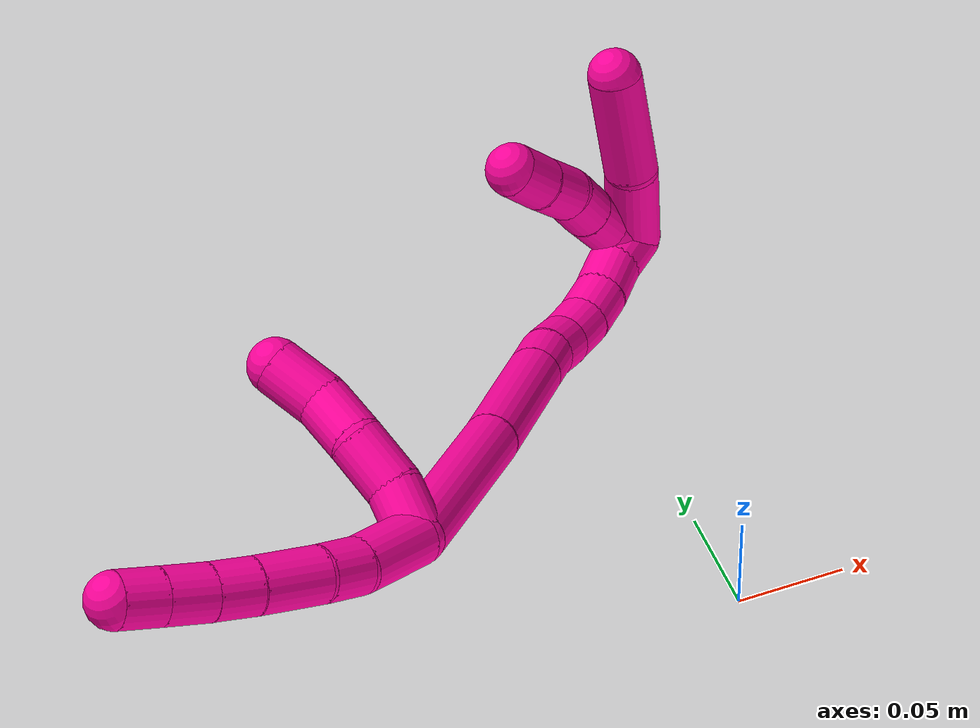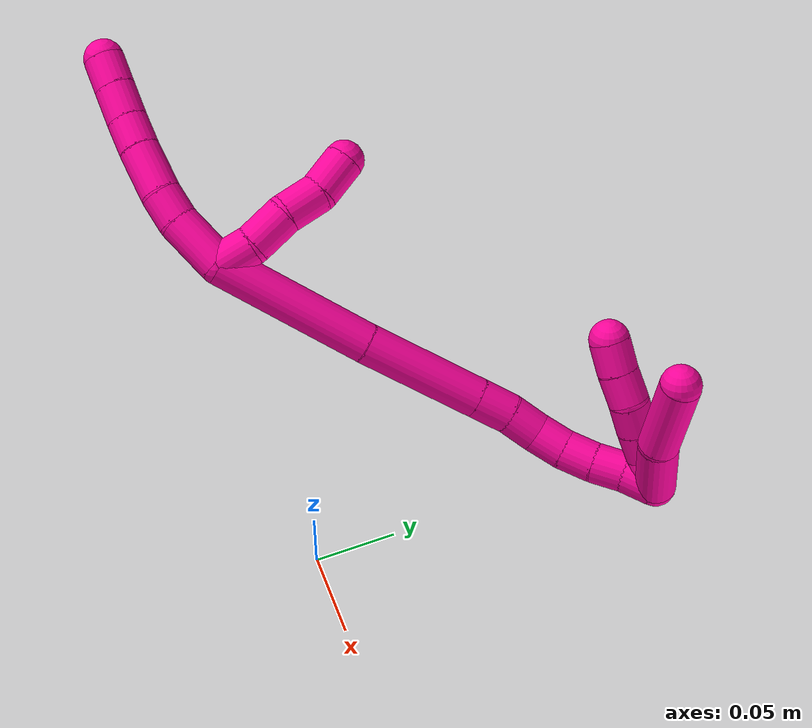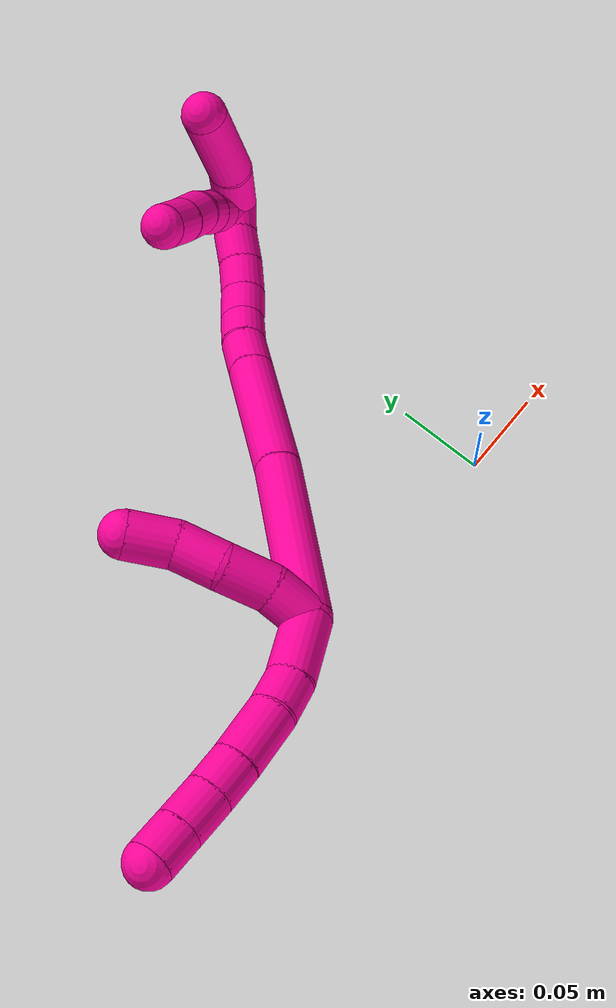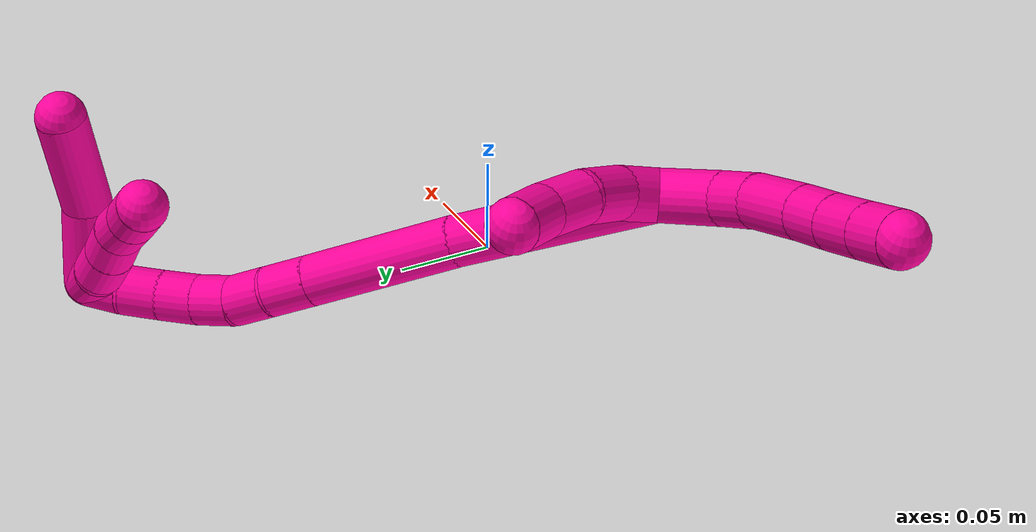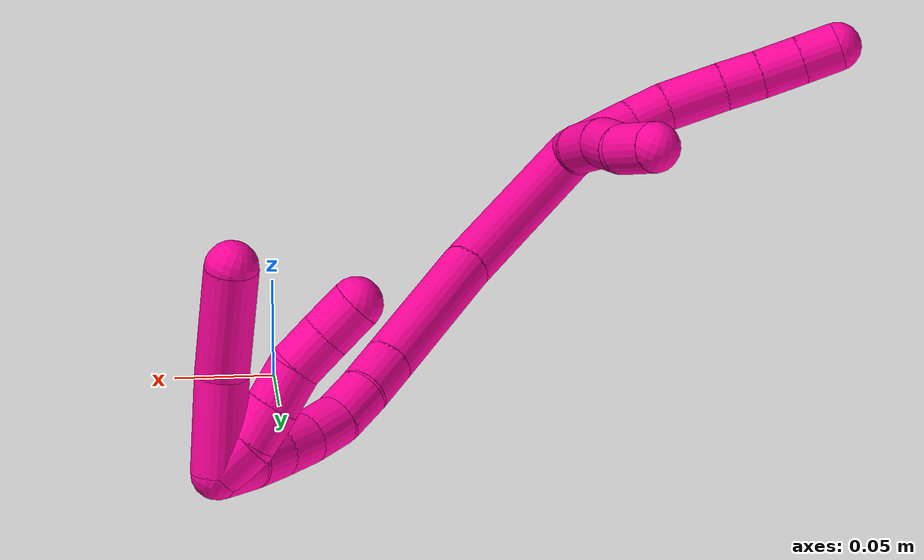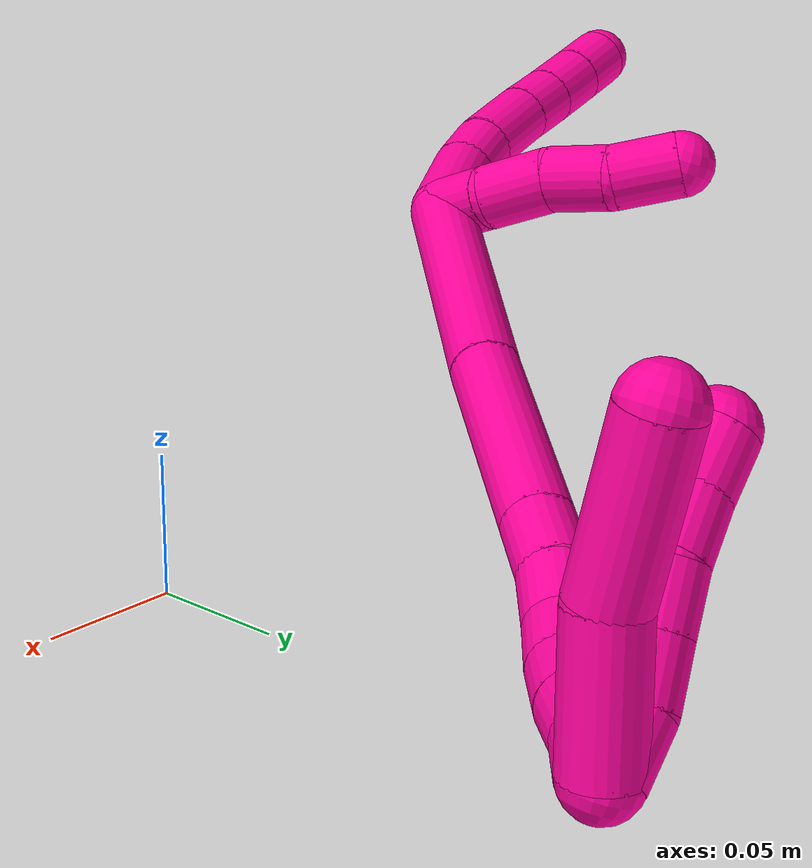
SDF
<sdf version="1.7">
 <world name="default">
  <model name="18">
   <static>0</static>
   <link name="18">
    <collision name="collision-cylinder-e_1_2_8">
     <pose>-0.013964 -0.005539 0.009922 0.509186 -0.887696 -0.246231</pose>
     <geometry><cylinder><radius>0.0125</radius><length>0.036007</length></cylinder></geometry>
     <surface>
      <friction><ode><mu>1.16</mu><mu2>1.16</mu2><slip1>0</slip1><slip2>0</slip2></ode></friction>
      <contact><ode><kp>1e+06</kp><kd>1</kd><max_vel>0</max_vel><min_depth>0.001</min_depth></ode></contact>
     </surface>
    </collision>
    <visual name="visual-cylinder-e_1_2_8">
     <pose>-0.013964 -0.005539 0.009922 0.509186 -0.887696 -0.246231</pose>
     <geometry><cylinder><radius>0.0125</radius><length>0.036007</length></cylinder></geometry>
     <material><ambient>1 0.007843 0.615686 1</ambient></material>
    </visual>
    <collision name="collision-cylinder-e_2_8_9">
     <pose>-0.035548 -0.012357 0.026219 0.197923 -0.864454 -0.091541</pose>
     <geometry><cylinder><radius>0.0125</radius><length>0.020035</length></cylinder></geometry>
     <surface>
      <friction><ode><mu>1.16</mu><mu2>1.16</mu2><slip1>0</slip1><slip2>0</slip2></ode></friction>
      <contact><ode><kp>1e+06</kp><kd>1</kd><max_vel>0</max_vel><min_depth>0.001</min_depth></ode></contact>
     </surface>
    </collision>
    <visual name="visual-cylinder-e_2_8_9">
     <pose>-0.035548 -0.012357 0.026219 0.197923 -0.864454 -0.091541</pose>
     <geometry><cylinder><radius>0.0125</radius><length>0.020035</length></cylinder></geometry>
     <material><ambient>1 0.007843 0.615686 1</ambient></material>
    </visual>
    <collision name="collision-cylinder-e_3_9_10">
     <pose>-0.055714 -0.013558 0.041876 -0.008386 -0.933818 0.004227</pose>
     <geometry><cylinder><radius>0.0125</radius><length>0.031212</length></cylinder></geometry>
     <surface>
      <friction><ode><mu>1.16</mu><mu2>1.16</mu2><slip1>0</slip1><slip2>0</slip2></ode></friction>
      <contact><ode><kp>1e+06</kp><kd>1</kd><max_vel>0</max_vel><min_depth>0.001</min_depth></ode></contact>
     </surface>
    </collision>
    <visual name="visual-cylinder-e_3_9_10">
     <pose>-0.055714 -0.013558 0.041876 -0.008386 -0.933818 0.004227</pose>
     <geometry><cylinder><radius>0.0125</radius><length>0.031212</length></cylinder></geometry>
     <material><ambient>1 0.007843 0.615686 1</ambient></material>
    </visual>
    <collision name="collision-cylinder-e_4_10_11">
     <pose>-0.076434 -0.012871 0.057188 -0.100728 -0.932747 0.05074</pose>
     <geometry><cylinder><radius>0.0125</radius><length>0.020352</length></cylinder></geometry>
     <surface>
      <friction><ode><mu>1.16</mu><mu2>1.16</mu2><slip1>0</slip1><slip2>0</slip2></ode></friction>
      <contact><ode><kp>1e+06</kp><kd>1</kd><max_vel>0</max_vel><min_depth>0.001</min_depth></ode></contact>
     </surface>
    </collision>
    <visual name="visual-cylinder-e_4_10_11">
     <pose>-0.076434 -0.012871 0.057188 -0.100728 -0.932747 0.05074</pose>
     <geometry><cylinder><radius>0.0125</radius><length>0.020352</length></cylinder></geometry>
     <material><ambient>1 0.007843 0.615686 1</ambient></material>
    </visual>
    <collision name="collision-cylinder-e_5_11_12">
     <pose>-0.093205 -0.011417 0.070141 -0.121316 -0.889199 0.057851</pose>
     <geometry><cylinder><radius>0.0125</radius><length>0.02214</length></cylinder></geometry>
     <surface>
      <friction><ode><mu>1.16</mu><mu2>1.16</mu2><slip1>0</slip1><slip2>0</slip2></ode></friction>
      <contact><ode><kp>1e+06</kp><kd>1</kd><max_vel>0</max_vel><min_depth>0.001</min_depth></ode></contact>
     </surface>
    </collision>
    <visual name="visual-cylinder-e_5_11_12">
     <pose>-0.093205 -0.011417 0.070141 -0.121316 -0.889199 0.057851</pose>
     <geometry><cylinder><radius>0.0125</radius><length>0.02214</length></cylinder></geometry>
     <material><ambient>1 0.007843 0.615686 1</ambient></material>
    </visual>
    <collision name="collision-cylinder-e_6_12_6">
     <pose>-0.109606 -0.009791 0.083471 -0.121475 -0.879864 0.057233</pose>
     <geometry><cylinder><radius>0.0125</radius><length>0.020254</length></cylinder></geometry>
     <surface>
      <friction><ode><mu>1.16</mu><mu2>1.16</mu2><slip1>0</slip1><slip2>0</slip2></ode></friction>
      <contact><ode><kp>1e+06</kp><kd>1</kd><max_vel>0</max_vel><min_depth>0.001</min_depth></ode></contact>
     </surface>
    </collision>
    <visual name="visual-cylinder-e_6_12_6">
     <pose>-0.109606 -0.009791 0.083471 -0.121475 -0.879864 0.057233</pose>
     <geometry><cylinder><radius>0.0125</radius><length>0.020254</length></cylinder></geometry>
     <material><ambient>1 0.007843 0.615686 1</ambient></material>
    </visual>
    <collision name="collision-cylinder-e_1_2_13">
     <pose>0.002773 0.010315 0.004705 -1.1429 0.239911 -0.154701</pose>
     <geometry><cylinder><radius>0.0125</radius><length>0.023343</length></cylinder></geometry>
     <surface>
      <friction><ode><mu>1.16</mu><mu2>1.16</mu2><slip1>0</slip1><slip2>0</slip2></ode></friction>
      <contact><ode><kp>1e+06</kp><kd>1</kd><max_vel>0</max_vel><min_depth>0.001</min_depth></ode></contact>
     </surface>
    </collision>
    <visual name="visual-cylinder-e_1_2_13">
     <pose>0.002773 0.010315 0.004705 -1.1429 0.239911 -0.154701</pose>
     <geometry><cylinder><radius>0.0125</radius><length>0.023343</length></cylinder></geometry>
     <material><ambient>1 0.007843 0.615686 1</ambient></material>
    </visual>
    <collision name="collision-cylinder-e_2_13_14">
     <pose>0.005405 0.03223 0.015745 -1.07082 -0.010716 0.006357</pose>
     <geometry><cylinder><radius>0.0125</radius><length>0.026436</length></cylinder></geometry>
     <surface>
      <friction><ode><mu>1.16</mu><mu2>1.16</mu2><slip1>0</slip1><slip2>0</slip2></ode></friction>
      <contact><ode><kp>1e+06</kp><kd>1</kd><max_vel>0</max_vel><min_depth>0.001</min_depth></ode></contact>
     </surface>
    </collision>
    <visual name="visual-cylinder-e_2_13_14">
     <pose>0.005405 0.03223 0.015745 -1.07082 -0.010716 0.006357</pose>
     <geometry><cylinder><radius>0.0125</radius><length>0.026436</length></cylinder></geometry>
     <material><ambient>1 0.007843 0.615686 1</ambient></material>
    </visual>
    <collision name="collision-cylinder-e_3_14_15">
     <pose>0.005112 0.055711 0.025161 -1.31723 -0.012315 0.009531</pose>
     <geometry><cylinder><radius>0.0125</radius><length>0.024551</length></cylinder></geometry>
     <surface>
      <friction><ode><mu>1.16</mu><mu2>1.16</mu2><slip1>0</slip1><slip2>0</slip2></ode></friction>
      <contact><ode><kp>1e+06</kp><kd>1</kd><max_vel>0</max_vel><min_depth>0.001</min_depth></ode></contact>
     </surface>
    </collision>
    <visual name="visual-cylinder-e_3_14_15">
     <pose>0.005112 0.055711 0.025161 -1.31723 -0.012315 0.009531</pose>
     <geometry><cylinder><radius>0.0125</radius><length>0.024551</length></cylinder></geometry>
     <material><ambient>1 0.007843 0.615686 1</ambient></material>
    </visual>
    <collision name="collision-cylinder-e_4_15_5">
     <pose>0.00192 0.078632 0.034039 -1.08713 -0.23924 0.145007</pose>
     <geometry><cylinder><radius>0.0125</radius><length>0.02567</length></cylinder></geometry>
     <surface>
      <friction><ode><mu>1.16</mu><mu2>1.16</mu2><slip1>0</slip1><slip2>0</slip2></ode></friction>
      <contact><ode><kp>1e+06</kp><kd>1</kd><max_vel>0</max_vel><min_depth>0.001</min_depth></ode></contact>
     </surface>
    </collision>
    <visual name="visual-cylinder-e_4_15_5">
     <pose>0.00192 0.078632 0.034039 -1.08713 -0.23924 0.145007</pose>
     <geometry><cylinder><radius>0.0125</radius><length>0.02567</length></cylinder></geometry>
     <material><ambient>1 0.007843 0.615686 1</ambient></material>
    </visual>
    <collision name="collision-cylinder-e_1_2_16">
     <pose>0.028475 0.032409 -0.025772 -2.2426 0.602419 -1.14422</pose>
     <geometry><cylinder><radius>0.0125</radius><length>0.100506</length></cylinder></geometry>
     <surface>
      <friction><ode><mu>1.16</mu><mu2>1.16</mu2><slip1>0</slip1><slip2>0</slip2></ode></friction>
      <contact><ode><kp>1e+06</kp><kd>1</kd><max_vel>0</max_vel><min_depth>0.001</min_depth></ode></contact>
     </surface>
    </collision>
    <visual name="visual-cylinder-e_1_2_16">
     <pose>0.028475 0.032409 -0.025772 -2.2426 0.602419 -1.14422</pose>
     <geometry><cylinder><radius>0.0125</radius><length>0.100506</length></cylinder></geometry>
     <material><ambient>1 0.007843 0.615686 1</ambient></material>
    </visual>
    <collision name="collision-cylinder-e_2_16_17">
     <pose>0.076967 0.090741 -0.07104 -2.21564 0.552903 -1.0337</pose>
     <geometry><cylinder><radius>0.0125</radius><length>0.07623</length></cylinder></geometry>
     <surface>
      <friction><ode><mu>1.16</mu><mu2>1.16</mu2><slip1>0</slip1><slip2>0</slip2></ode></friction>
      <contact><ode><kp>1e+06</kp><kd>1</kd><max_vel>0</max_vel><min_depth>0.001</min_depth></ode></contact>
     </surface>
    </collision>
    <visual name="visual-cylinder-e_2_16_17">
     <pose>0.076967 0.090741 -0.07104 -2.21564 0.552903 -1.0337</pose>
     <geometry><cylinder><radius>0.0125</radius><length>0.07623</length></cylinder></geometry>
     <material><ambient>1 0.007843 0.615686 1</ambient></material>
    </visual>
    <collision name="collision-cylinder-e_3_17_18">
     <pose>0.102981 0.124371 -0.096301 -2.21301 0.557248 -1.03797</pose>
     <geometry><cylinder><radius>0.0125</radius><length>0.022681</length></cylinder></geometry>
     <surface>
      <friction><ode><mu>1.16</mu><mu2>1.16</mu2><slip1>0</slip1><slip2>0</slip2></ode></friction>
      <contact><ode><kp>1e+06</kp><kd>1</kd><max_vel>0</max_vel><min_depth>0.001</min_depth></ode></contact>
     </surface>
    </collision>
    <visual name="visual-cylinder-e_3_17_18">
     <pose>0.102981 0.124371 -0.096301 -2.21301 0.557248 -1.03797</pose>
     <geometry><cylinder><radius>0.0125</radius><length>0.022681</length></cylinder></geometry>
     <material><ambient>1 0.007843 0.615686 1</ambient></material>
    </visual>
    <collision name="collision-cylinder-e_4_18_19">
     <pose>0.114782 0.137913 -0.108221 -2.3829 0.600115 -1.32001</pose>
     <geometry><cylinder><radius>0.0125</radius><length>0.020553</length></cylinder></geometry>
     <surface>
      <friction><ode><mu>1.16</mu><mu2>1.16</mu2><slip1>0</slip1><slip2>0</slip2></ode></friction>
      <contact><ode><kp>1e+06</kp><kd>1</kd><max_vel>0</max_vel><min_depth>0.001</min_depth></ode></contact>
     </surface>
    </collision>
    <visual name="visual-cylinder-e_4_18_19">
     <pose>0.114782 0.137913 -0.108221 -2.3829 0.600115 -1.32001</pose>
     <geometry><cylinder><radius>0.0125</radius><length>0.020553</length></cylinder></geometry>
     <material><ambient>1 0.007843 0.615686 1</ambient></material>
    </visual>
    <collision name="collision-cylinder-e_5_19_20">
     <pose>0.12794 0.149016 -0.118671 -2.25476 0.824736 -1.48862</pose>
     <geometry><cylinder><radius>0.0125</radius><length>0.020029</length></cylinder></geometry>
     <surface>
      <friction><ode><mu>1.16</mu><mu2>1.16</mu2><slip1>0</slip1><slip2>0</slip2></ode></friction>
      <contact><ode><kp>1e+06</kp><kd>1</kd><max_vel>0</max_vel><min_depth>0.001</min_depth></ode></contact>
     </surface>
    </collision>
    <visual name="visual-cylinder-e_5_19_20">
     <pose>0.12794 0.149016 -0.118671 -2.25476 0.824736 -1.48862</pose>
     <geometry><cylinder><radius>0.0125</radius><length>0.020029</length></cylinder></geometry>
     <material><ambient>1 0.007843 0.615686 1</ambient></material>
    </visual>
    <collision name="collision-cylinder-e_6_20_21">
     <pose>0.142977 0.16008 -0.125683 -2.00926 0.876181 -1.27032</pose>
     <geometry><cylinder><radius>0.0125</radius><length>0.020001</length></cylinder></geometry>
     <surface>
      <friction><ode><mu>1.16</mu><mu2>1.16</mu2><slip1>0</slip1><slip2>0</slip2></ode></friction>
      <contact><ode><kp>1e+06</kp><kd>1</kd><max_vel>0</max_vel><min_depth>0.001</min_depth></ode></contact>
     </surface>
    </collision>
    <visual name="visual-cylinder-e_6_20_21">
     <pose>0.142977 0.16008 -0.125683 -2.00926 0.876181 -1.27032</pose>
     <geometry><cylinder><radius>0.0125</radius><length>0.020001</length></cylinder></geometry>
     <material><ambient>1 0.007843 0.615686 1</ambient></material>
    </visual>
    <collision name="collision-cylinder-e_7_21_22">
     <pose>0.158174 0.172258 -0.13008 -1.828 0.850042 -1.06169</pose>
     <geometry><cylinder><radius>0.0125</radius><length>0.02</length></cylinder></geometry>
     <surface>
      <friction><ode><mu>1.16</mu><mu2>1.16</mu2><slip1>0</slip1><slip2>0</slip2></ode></friction>
      <contact><ode><kp>1e+06</kp><kd>1</kd><max_vel>0</max_vel><min_depth>0.001</min_depth></ode></contact>
     </surface>
    </collision>
    <visual name="visual-cylinder-e_7_21_22">
     <pose>0.158174 0.172258 -0.13008 -1.828 0.850042 -1.06169</pose>
     <geometry><cylinder><radius>0.0125</radius><length>0.02</length></cylinder></geometry>
     <material><ambient>1 0.007843 0.615686 1</ambient></material>
    </visual>
    <collision name="collision-cylinder-e_8_22_1">
     <pose>0.173987 0.183798 -0.133881 -1.96115 0.979117 -1.34386</pose>
     <geometry><cylinder><radius>0.0125</radius><length>0.02</length></cylinder></geometry>
     <surface>
      <friction><ode><mu>1.16</mu><mu2>1.16</mu2><slip1>0</slip1><slip2>0</slip2></ode></friction>
      <contact><ode><kp>1e+06</kp><kd>1</kd><max_vel>0</max_vel><min_depth>0.001</min_depth></ode></contact>
     </surface>
    </collision>
    <visual name="visual-cylinder-e_8_22_1">
     <pose>0.173987 0.183798 -0.133881 -1.96115 0.979117 -1.34386</pose>
     <geometry><cylinder><radius>0.0125</radius><length>0.02</length></cylinder></geometry>
     <material><ambient>1 0.007843 0.615686 1</ambient></material>
    </visual>
    <collision name="collision-cylinder-e_1_1_23">
     <pose>0.177672 0.188835 -0.127133 0.013675 -0.479707 -0.003345</pose>
     <geometry><cylinder><radius>0.0125</radius><length>0.02</length></cylinder></geometry>
     <surface>
      <friction><ode><mu>1.16</mu><mu2>1.16</mu2><slip1>0</slip1><slip2>0</slip2></ode></friction>
      <contact><ode><kp>1e+06</kp><kd>1</kd><max_vel>0</max_vel><min_depth>0.001</min_depth></ode></contact>
     </surface>
    </collision>
    <visual name="visual-cylinder-e_1_1_23">
     <pose>0.177672 0.188835 -0.127133 0.013675 -0.479707 -0.003345</pose>
     <geometry><cylinder><radius>0.0125</radius><length>0.02</length></cylinder></geometry>
     <material><ambient>1 0.007843 0.615686 1</ambient></material>
    </visual>
    <collision name="collision-cylinder-e_2_23_24">
     <pose>0.170463 0.186969 -0.108764 0.181711 -0.262409 -0.024044</pose>
     <geometry><cylinder><radius>0.0125</radius><length>0.02</length></cylinder></geometry>
     <surface>
      <friction><ode><mu>1.16</mu><mu2>1.16</mu2><slip1>0</slip1><slip2>0</slip2></ode></friction>
      <contact><ode><kp>1e+06</kp><kd>1</kd><max_vel>0</max_vel><min_depth>0.001</min_depth></ode></contact>
     </surface>
    </collision>
    <visual name="visual-cylinder-e_2_23_24">
     <pose>0.170463 0.186969 -0.108764 0.181711 -0.262409 -0.024044</pose>
     <geometry><cylinder><radius>0.0125</radius><length>0.02</length></cylinder></geometry>
     <material><ambient>1 0.007843 0.615686 1</ambient></material>
    </visual>
    <collision name="collision-cylinder-e_3_24_25">
     <pose>0.165701 0.183774 -0.089611 0.149024 -0.218472 -0.016374</pose>
     <geometry><cylinder><radius>0.0125</radius><length>0.02</length></cylinder></geometry>
     <surface>
      <friction><ode><mu>1.16</mu><mu2>1.16</mu2><slip1>0</slip1><slip2>0</slip2></ode></friction>
      <contact><ode><kp>1e+06</kp><kd>1</kd><max_vel>0</max_vel><min_depth>0.001</min_depth></ode></contact>
     </surface>
    </collision>
    <visual name="visual-cylinder-e_3_24_25">
     <pose>0.165701 0.183774 -0.089611 0.149024 -0.218472 -0.016374</pose>
     <geometry><cylinder><radius>0.0125</radius><length>0.02</length></cylinder></geometry>
     <material><ambient>1 0.007843 0.615686 1</ambient></material>
    </visual>
    <collision name="collision-cylinder-e_4_25_26">
     <pose>0.159155 0.181422 -0.071012 0.100522 -0.453247 -0.023197</pose>
     <geometry><cylinder><radius>0.0125</radius><length>0.02</length></cylinder></geometry>
     <surface>
      <friction><ode><mu>1.16</mu><mu2>1.16</mu2><slip1>0</slip1><slip2>0</slip2></ode></friction>
      <contact><ode><kp>1e+06</kp><kd>1</kd><max_vel>0</max_vel><min_depth>0.001</min_depth></ode></contact>
     </surface>
    </collision>
    <visual name="visual-cylinder-e_4_25_26">
     <pose>0.159155 0.181422 -0.071012 0.100522 -0.453247 -0.023197</pose>
     <geometry><cylinder><radius>0.0125</radius><length>0.02</length></cylinder></geometry>
     <material><ambient>1 0.007843 0.615686 1</ambient></material>
    </visual>
    <collision name="collision-cylinder-e_5_26_4">
     <pose>0.150587 0.180405 -0.052987 0.012665 -0.432259 -0.002781</pose>
     <geometry><cylinder><radius>0.0125</radius><length>0.02</length></cylinder></geometry>
     <surface>
      <friction><ode><mu>1.16</mu><mu2>1.16</mu2><slip1>0</slip1><slip2>0</slip2></ode></friction>
      <contact><ode><kp>1e+06</kp><kd>1</kd><max_vel>0</max_vel><min_depth>0.001</min_depth></ode></contact>
     </surface>
    </collision>
    <visual name="visual-cylinder-e_5_26_4">
     <pose>0.150587 0.180405 -0.052987 0.012665 -0.432259 -0.002781</pose>
     <geometry><cylinder><radius>0.0125</radius><length>0.02</length></cylinder></geometry>
     <material><ambient>1 0.007843 0.615686 1</ambient></material>
    </visual>
    <collision name="collision-cylinder-e_1_1_27">
     <pose>0.18849 0.185319 -0.114038 0.164093 0.271726 0.022482</pose>
     <geometry><cylinder><radius>0.0125</radius><length>0.046225</length></cylinder></geometry>
     <surface>
      <friction><ode><mu>1.16</mu><mu2>1.16</mu2><slip1>0</slip1><slip2>0</slip2></ode></friction>
      <contact><ode><kp>1e+06</kp><kd>1</kd><max_vel>0</max_vel><min_depth>0.001</min_depth></ode></contact>
     </surface>
    </collision>
    <visual name="visual-cylinder-e_1_1_27">
     <pose>0.18849 0.185319 -0.114038 0.164093 0.271726 0.022482</pose>
     <geometry><cylinder><radius>0.0125</radius><length>0.046225</length></cylinder></geometry>
     <material><ambient>1 0.007843 0.615686 1</ambient></material>
    </visual>
    <collision name="collision-cylinder-e_2_27_3">
     <pose>0.202179 0.18367 -0.066325 -0.077024 0.28211 -0.010943</pose>
     <geometry><cylinder><radius>0.0125</radius><length>0.053775</length></cylinder></geometry>
     <surface>
      <friction><ode><mu>1.16</mu><mu2>1.16</mu2><slip1>0</slip1><slip2>0</slip2></ode></friction>
      <contact><ode><kp>1e+06</kp><kd>1</kd><max_vel>0</max_vel><min_depth>0.001</min_depth></ode></contact>
     </surface>
    </collision>
    <visual name="visual-cylinder-e_2_27_3">
     <pose>0.202179 0.18367 -0.066325 -0.077024 0.28211 -0.010943</pose>
     <geometry><cylinder><radius>0.0125</radius><length>0.053775</length></cylinder></geometry>
     <material><ambient>1 0.007843 0.615686 1</ambient></material>
    </visual>
    <collision name="collision-sphere-3">
     <pose>0.209664 0.185657 -0.040576 0 -0 0</pose>
     <geometry><sphere><radius>0.0125</radius></sphere></geometry>
     <surface>
      <friction><ode><mu>1.16</mu><mu2>1.16</mu2><slip1>0</slip1><slip2>0</slip2></ode></friction>
      <contact><ode><kp>1e+06</kp><kd>1</kd><max_vel>0</max_vel><min_depth>0.001</min_depth></ode></contact>
     </surface>
    </collision>
    <visual name="visual-sphere-3">
     <pose>0.209664 0.185657 -0.040576 0 -0 0</pose>
     <geometry><sphere><radius>0.0125</radius></sphere></geometry>
     <material><ambient>1 0.007843 0.615686 1</ambient></material>
    </visual>
    <collision name="collision-sphere-27">
     <pose>0.194694 0.181682 -0.092073 0 -0 0</pose>
     <geometry><sphere><radius>0.0125</radius></sphere></geometry>
     <surface>
      <friction><ode><mu>1.16</mu><mu2>1.16</mu2><slip1>0</slip1><slip2>0</slip2></ode></friction>
      <contact><ode><kp>1e+06</kp><kd>1</kd><max_vel>0</max_vel><min_depth>0.001</min_depth></ode></contact>
     </surface>
    </collision>
    <visual name="visual-sphere-27">
     <pose>0.194694 0.181682 -0.092073 0 -0 0</pose>
     <geometry><sphere><radius>0.0125</radius></sphere></geometry>
     <material><ambient>1 0.007843 0.615686 1</ambient></material>
    </visual>
    <collision name="collision-sphere-4">
     <pose>0.146398 0.18029 -0.043908 0 -0 0</pose>
     <geometry><sphere><radius>0.0125</radius></sphere></geometry>
     <surface>
      <friction><ode><mu>1.16</mu><mu2>1.16</mu2><slip1>0</slip1><slip2>0</slip2></ode></friction>
      <contact><ode><kp>1e+06</kp><kd>1</kd><max_vel>0</max_vel><min_depth>0.001</min_depth></ode></contact>
     </surface>
    </collision>
    <visual name="visual-sphere-4">
     <pose>0.146398 0.18029 -0.043908 0 -0 0</pose>
     <geometry><sphere><radius>0.0125</radius></sphere></geometry>
     <material><ambient>1 0.007843 0.615686 1</ambient></material>
    </visual>
    <collision name="collision-sphere-26">
     <pose>0.154776 0.18052 -0.062067 0 -0 0</pose>
     <geometry><sphere><radius>0.0125</radius></sphere></geometry>
     <surface>
      <friction><ode><mu>1.16</mu><mu2>1.16</mu2><slip1>0</slip1><slip2>0</slip2></ode></friction>
      <contact><ode><kp>1e+06</kp><kd>1</kd><max_vel>0</max_vel><min_depth>0.001</min_depth></ode></contact>
     </surface>
    </collision>
    <visual name="visual-sphere-26">
     <pose>0.154776 0.18052 -0.062067 0 -0 0</pose>
     <geometry><sphere><radius>0.0125</radius></sphere></geometry>
     <material><ambient>1 0.007843 0.615686 1</ambient></material>
    </visual>
    <collision name="collision-sphere-25">
     <pose>0.163534 0.182324 -0.079957 0 -0 0</pose>
     <geometry><sphere><radius>0.0125</radius></sphere></geometry>
     <surface>
      <friction><ode><mu>1.16</mu><mu2>1.16</mu2><slip1>0</slip1><slip2>0</slip2></ode></friction>
      <contact><ode><kp>1e+06</kp><kd>1</kd><max_vel>0</max_vel><min_depth>0.001</min_depth></ode></contact>
     </surface>
    </collision>
    <visual name="visual-sphere-25">
     <pose>0.163534 0.182324 -0.079957 0 -0 0</pose>
     <geometry><sphere><radius>0.0125</radius></sphere></geometry>
     <material><ambient>1 0.007843 0.615686 1</ambient></material>
    </visual>
    <collision name="collision-sphere-24">
     <pose>0.167869 0.185223 -0.099265 0 -0 0</pose>
     <geometry><sphere><radius>0.0125</radius></sphere></geometry>
     <surface>
      <friction><ode><mu>1.16</mu><mu2>1.16</mu2><slip1>0</slip1><slip2>0</slip2></ode></friction>
      <contact><ode><kp>1e+06</kp><kd>1</kd><max_vel>0</max_vel><min_depth>0.001</min_depth></ode></contact>
     </surface>
    </collision>
    <visual name="visual-sphere-24">
     <pose>0.167869 0.185223 -0.099265 0 -0 0</pose>
     <geometry><sphere><radius>0.0125</radius></sphere></geometry>
     <material><ambient>1 0.007843 0.615686 1</ambient></material>
    </visual>
    <collision name="collision-sphere-23">
     <pose>0.173057 0.188714 -0.118262 0 -0 0</pose>
     <geometry><sphere><radius>0.0125</radius></sphere></geometry>
     <surface>
      <friction><ode><mu>1.16</mu><mu2>1.16</mu2><slip1>0</slip1><slip2>0</slip2></ode></friction>
      <contact><ode><kp>1e+06</kp><kd>1</kd><max_vel>0</max_vel><min_depth>0.001</min_depth></ode></contact>
     </surface>
    </collision>
    <visual name="visual-sphere-23">
     <pose>0.173057 0.188714 -0.118262 0 -0 0</pose>
     <geometry><sphere><radius>0.0125</radius></sphere></geometry>
     <material><ambient>1 0.007843 0.615686 1</ambient></material>
    </visual>
    <collision name="collision-sphere-1">
     <pose>0.182287 0.188956 -0.136003 0 -0 0</pose>
     <geometry><sphere><radius>0.0125</radius></sphere></geometry>
     <surface>
      <friction><ode><mu>1.16</mu><mu2>1.16</mu2><slip1>0</slip1><slip2>0</slip2></ode></friction>
      <contact><ode><kp>1e+06</kp><kd>1</kd><max_vel>0</max_vel><min_depth>0.001</min_depth></ode></contact>
     </surface>
    </collision>
    <visual name="visual-sphere-1">
     <pose>0.182287 0.188956 -0.136003 0 -0 0</pose>
     <geometry><sphere><radius>0.0125</radius></sphere></geometry>
     <material><ambient>1 0.007843 0.615686 1</ambient></material>
    </visual>
    <collision name="collision-sphere-22">
     <pose>0.165687 0.17864 -0.131759 0 -0 0</pose>
     <geometry><sphere><radius>0.0125</radius></sphere></geometry>
     <surface>
      <friction><ode><mu>1.16</mu><mu2>1.16</mu2><slip1>0</slip1><slip2>0</slip2></ode></friction>
      <contact><ode><kp>1e+06</kp><kd>1</kd><max_vel>0</max_vel><min_depth>0.001</min_depth></ode></contact>
     </surface>
    </collision>
    <visual name="visual-sphere-22">
     <pose>0.165687 0.17864 -0.131759 0 -0 0</pose>
     <geometry><sphere><radius>0.0125</radius></sphere></geometry>
     <material><ambient>1 0.007843 0.615686 1</ambient></material>
    </visual>
    <collision name="collision-sphere-21">
     <pose>0.150661 0.165876 -0.128401 0 -0 0</pose>
     <geometry><sphere><radius>0.0125</radius></sphere></geometry>
     <surface>
      <friction><ode><mu>1.16</mu><mu2>1.16</mu2><slip1>0</slip1><slip2>0</slip2></ode></friction>
      <contact><ode><kp>1e+06</kp><kd>1</kd><max_vel>0</max_vel><min_depth>0.001</min_depth></ode></contact>
     </surface>
    </collision>
    <visual name="visual-sphere-21">
     <pose>0.150661 0.165876 -0.128401 0 -0 0</pose>
     <geometry><sphere><radius>0.0125</radius></sphere></geometry>
     <material><ambient>1 0.007843 0.615686 1</ambient></material>
    </visual>
    <collision name="collision-sphere-12">
     <pose>-0.101801 -0.010573 0.077065 0 -0 0</pose>
     <geometry><sphere><radius>0.0125</radius></sphere></geometry>
     <surface>
      <friction><ode><mu>1.16</mu><mu2>1.16</mu2><slip1>0</slip1><slip2>0</slip2></ode></friction>
      <contact><ode><kp>1e+06</kp><kd>1</kd><max_vel>0</max_vel><min_depth>0.001</min_depth></ode></contact>
     </surface>
    </collision>
    <visual name="visual-sphere-12">
     <pose>-0.101801 -0.010573 0.077065 0 -0 0</pose>
     <geometry><sphere><radius>0.0125</radius></sphere></geometry>
     <material><ambient>1 0.007843 0.615686 1</ambient></material>
    </visual>
    <collision name="collision-sphere-11">
     <pose>-0.084608 -0.012261 0.063218 0 -0 0</pose>
     <geometry><sphere><radius>0.0125</radius></sphere></geometry>
     <surface>
      <friction><ode><mu>1.16</mu><mu2>1.16</mu2><slip1>0</slip1><slip2>0</slip2></ode></friction>
      <contact><ode><kp>1e+06</kp><kd>1</kd><max_vel>0</max_vel><min_depth>0.001</min_depth></ode></contact>
     </surface>
    </collision>
    <visual name="visual-sphere-11">
     <pose>-0.084608 -0.012261 0.063218 0 -0 0</pose>
     <geometry><sphere><radius>0.0125</radius></sphere></geometry>
     <material><ambient>1 0.007843 0.615686 1</ambient></material>
    </visual>
    <collision name="collision-sphere-10">
     <pose>-0.06826 -0.01348 0.051157 0 -0 0</pose>
     <geometry><sphere><radius>0.0125</radius></sphere></geometry>
     <surface>
      <friction><ode><mu>1.16</mu><mu2>1.16</mu2><slip1>0</slip1><slip2>0</slip2></ode></friction>
      <contact><ode><kp>1e+06</kp><kd>1</kd><max_vel>0</max_vel><min_depth>0.001</min_depth></ode></contact>
     </surface>
    </collision>
    <visual name="visual-sphere-10">
     <pose>-0.06826 -0.01348 0.051157 0 -0 0</pose>
     <geometry><sphere><radius>0.0125</radius></sphere></geometry>
     <material><ambient>1 0.007843 0.615686 1</ambient></material>
    </visual>
    <collision name="collision-sphere-9">
     <pose>-0.043169 -0.013636 0.032594 0 -0 0</pose>
     <geometry><sphere><radius>0.0125</radius></sphere></geometry>
     <surface>
      <friction><ode><mu>1.16</mu><mu2>1.16</mu2><slip1>0</slip1><slip2>0</slip2></ode></friction>
      <contact><ode><kp>1e+06</kp><kd>1</kd><max_vel>0</max_vel><min_depth>0.001</min_depth></ode></contact>
     </surface>
    </collision>
    <visual name="visual-sphere-9">
     <pose>-0.043169 -0.013636 0.032594 0 -0 0</pose>
     <geometry><sphere><radius>0.0125</radius></sphere></geometry>
     <material><ambient>1 0.007843 0.615686 1</ambient></material>
    </visual>
    <collision name="collision-sphere-2">
     <geometry><sphere><radius>0.0125</radius></sphere></geometry>
     <surface>
      <friction><ode><mu>1.16</mu><mu2>1.16</mu2><slip1>0</slip1><slip2>0</slip2></ode></friction>
      <contact><ode><kp>1e+06</kp><kd>1</kd><max_vel>0</max_vel><min_depth>0.001</min_depth></ode></contact>
     </surface>
    </collision>
    <visual name="visual-sphere-2">
     <geometry><sphere><radius>0.0125</radius></sphere></geometry>
     <material><ambient>1 0.007843 0.615686 1</ambient></material>
    </visual>
    <collision name="collision-sphere-19">
     <pose>0.120585 0.143747 -0.114376 0 -0 0</pose>
     <geometry><sphere><radius>0.0125</radius></sphere></geometry>
     <surface>
      <friction><ode><mu>1.16</mu><mu2>1.16</mu2><slip1>0</slip1><slip2>0</slip2></ode></friction>
      <contact><ode><kp>1e+06</kp><kd>1</kd><max_vel>0</max_vel><min_depth>0.001</min_depth></ode></contact>
     </surface>
    </collision>
    <visual name="visual-sphere-19">
     <pose>0.120585 0.143747 -0.114376 0 -0 0</pose>
     <geometry><sphere><radius>0.0125</radius></sphere></geometry>
     <material><ambient>1 0.007843 0.615686 1</ambient></material>
    </visual>
    <collision name="collision-sphere-8">
     <pose>-0.027927 -0.011079 0.019844 0 -0 0</pose>
     <geometry><sphere><radius>0.0125</radius></sphere></geometry>
     <surface>
      <friction><ode><mu>1.16</mu><mu2>1.16</mu2><slip1>0</slip1><slip2>0</slip2></ode></friction>
      <contact><ode><kp>1e+06</kp><kd>1</kd><max_vel>0</max_vel><min_depth>0.001</min_depth></ode></contact>
     </surface>
    </collision>
    <visual name="visual-sphere-8">
     <pose>-0.027927 -0.011079 0.019844 0 -0 0</pose>
     <geometry><sphere><radius>0.0125</radius></sphere></geometry>
     <material><ambient>1 0.007843 0.615686 1</ambient></material>
    </visual>
    <collision name="collision-sphere-6">
     <pose>-0.11741 -0.009009 0.089877 0 -0 0</pose>
     <geometry><sphere><radius>0.0125</radius></sphere></geometry>
     <surface>
      <friction><ode><mu>1.16</mu><mu2>1.16</mu2><slip1>0</slip1><slip2>0</slip2></ode></friction>
      <contact><ode><kp>1e+06</kp><kd>1</kd><max_vel>0</max_vel><min_depth>0.001</min_depth></ode></contact>
     </surface>
    </collision>
    <visual name="visual-sphere-6">
     <pose>-0.11741 -0.009009 0.089877 0 -0 0</pose>
     <geometry><sphere><radius>0.0125</radius></sphere></geometry>
     <material><ambient>1 0.007843 0.615686 1</ambient></material>
    </visual>
    <collision name="collision-sphere-13">
     <pose>0.005547 0.02063 0.009409 0 -0 0</pose>
     <geometry><sphere><radius>0.0125</radius></sphere></geometry>
     <surface>
      <friction><ode><mu>1.16</mu><mu2>1.16</mu2><slip1>0</slip1><slip2>0</slip2></ode></friction>
      <contact><ode><kp>1e+06</kp><kd>1</kd><max_vel>0</max_vel><min_depth>0.001</min_depth></ode></contact>
     </surface>
    </collision>
    <visual name="visual-sphere-13">
     <pose>0.005547 0.02063 0.009409 0 -0 0</pose>
     <geometry><sphere><radius>0.0125</radius></sphere></geometry>
     <material><ambient>1 0.007843 0.615686 1</ambient></material>
    </visual>
    <collision name="collision-sphere-14">
     <pose>0.005263 0.043829 0.022082 0 -0 0</pose>
     <geometry><sphere><radius>0.0125</radius></sphere></geometry>
     <surface>
      <friction><ode><mu>1.16</mu><mu2>1.16</mu2><slip1>0</slip1><slip2>0</slip2></ode></friction>
      <contact><ode><kp>1e+06</kp><kd>1</kd><max_vel>0</max_vel><min_depth>0.001</min_depth></ode></contact>
     </surface>
    </collision>
    <visual name="visual-sphere-14">
     <pose>0.005263 0.043829 0.022082 0 -0 0</pose>
     <geometry><sphere><radius>0.0125</radius></sphere></geometry>
     <material><ambient>1 0.007843 0.615686 1</ambient></material>
    </visual>
    <collision name="collision-sphere-15">
     <pose>0.004961 0.067593 0.02824 0 -0 0</pose>
     <geometry><sphere><radius>0.0125</radius></sphere></geometry>
     <surface>
      <friction><ode><mu>1.16</mu><mu2>1.16</mu2><slip1>0</slip1><slip2>0</slip2></ode></friction>
      <contact><ode><kp>1e+06</kp><kd>1</kd><max_vel>0</max_vel><min_depth>0.001</min_depth></ode></contact>
     </surface>
    </collision>
    <visual name="visual-sphere-15">
     <pose>0.004961 0.067593 0.02824 0 -0 0</pose>
     <geometry><sphere><radius>0.0125</radius></sphere></geometry>
     <material><ambient>1 0.007843 0.615686 1</ambient></material>
    </visual>
    <collision name="collision-sphere-5">
     <pose>-0.001122 0.089671 0.039838 0 -0 0</pose>
     <geometry><sphere><radius>0.0125</radius></sphere></geometry>
     <surface>
      <friction><ode><mu>1.16</mu><mu2>1.16</mu2><slip1>0</slip1><slip2>0</slip2></ode></friction>
      <contact><ode><kp>1e+06</kp><kd>1</kd><max_vel>0</max_vel><min_depth>0.001</min_depth></ode></contact>
     </surface>
    </collision>
    <visual name="visual-sphere-5">
     <pose>-0.001122 0.089671 0.039838 0 -0 0</pose>
     <geometry><sphere><radius>0.0125</radius></sphere></geometry>
     <material><ambient>1 0.007843 0.615686 1</ambient></material>
    </visual>
    <collision name="collision-sphere-16">
     <pose>0.056951 0.064818 -0.051543 0 -0 0</pose>
     <geometry><sphere><radius>0.0125</radius></sphere></geometry>
     <surface>
      <friction><ode><mu>1.16</mu><mu2>1.16</mu2><slip1>0</slip1><slip2>0</slip2></ode></friction>
      <contact><ode><kp>1e+06</kp><kd>1</kd><max_vel>0</max_vel><min_depth>0.001</min_depth></ode></contact>
     </surface>
    </collision>
    <visual name="visual-sphere-16">
     <pose>0.056951 0.064818 -0.051543 0 -0 0</pose>
     <geometry><sphere><radius>0.0125</radius></sphere></geometry>
     <material><ambient>1 0.007843 0.615686 1</ambient></material>
    </visual>
    <collision name="collision-sphere-17">
     <pose>0.096984 0.116664 -0.090536 0 -0 0</pose>
     <geometry><sphere><radius>0.0125</radius></sphere></geometry>
     <surface>
      <friction><ode><mu>1.16</mu><mu2>1.16</mu2><slip1>0</slip1><slip2>0</slip2></ode></friction>
      <contact><ode><kp>1e+06</kp><kd>1</kd><max_vel>0</max_vel><min_depth>0.001</min_depth></ode></contact>
     </surface>
    </collision>
    <visual name="visual-sphere-17">
     <pose>0.096984 0.116664 -0.090536 0 -0 0</pose>
     <geometry><sphere><radius>0.0125</radius></sphere></geometry>
     <material><ambient>1 0.007843 0.615686 1</ambient></material>
    </visual>
    <collision name="collision-sphere-18">
     <pose>0.108978 0.132078 -0.102066 0 -0 0</pose>
     <geometry><sphere><radius>0.0125</radius></sphere></geometry>
     <surface>
      <friction><ode><mu>1.16</mu><mu2>1.16</mu2><slip1>0</slip1><slip2>0</slip2></ode></friction>
      <contact><ode><kp>1e+06</kp><kd>1</kd><max_vel>0</max_vel><min_depth>0.001</min_depth></ode></contact>
     </surface>
    </collision>
    <visual name="visual-sphere-18">
     <pose>0.108978 0.132078 -0.102066 0 -0 0</pose>
     <geometry><sphere><radius>0.0125</radius></sphere></geometry>
     <material><ambient>1 0.007843 0.615686 1</ambient></material>
    </visual>
    <collision name="collision-sphere-20">
     <pose>0.135294 0.154284 -0.122966 0 -0 0</pose>
     <geometry><sphere><radius>0.0125</radius></sphere></geometry>
     <surface>
      <friction><ode><mu>1.16</mu><mu2>1.16</mu2><slip1>0</slip1><slip2>0</slip2></ode></friction>
      <contact><ode><kp>1e+06</kp><kd>1</kd><max_vel>0</max_vel><min_depth>0.001</min_depth></ode></contact>
     </surface>
    </collision>
    <visual name="visual-sphere-20">
     <pose>0.135294 0.154284 -0.122966 0 -0 0</pose>
     <geometry><sphere><radius>0.0125</radius></sphere></geometry>
     <material><ambient>1 0.007843 0.615686 1</ambient></material>
    </visual>
    <inertial>
     <pose>0.070847 0.091873 -0.042396 0 -0 0</pose>
     <mass>0.75</mass>
     <inertia><ixx>1e-06</ixx><ixy>0</ixy><ixz>0</ixz><iyy>-1.3e-05</iyy><iyz>0</iyz><izz>-0.000151</izz></inertia>
    </inertial>
   </link>
   <pose>-0.151777 -0.004375 0.110809 -0.139721 -0.340394 0.205087</pose>
  </model>
 </world>
</sdf>
